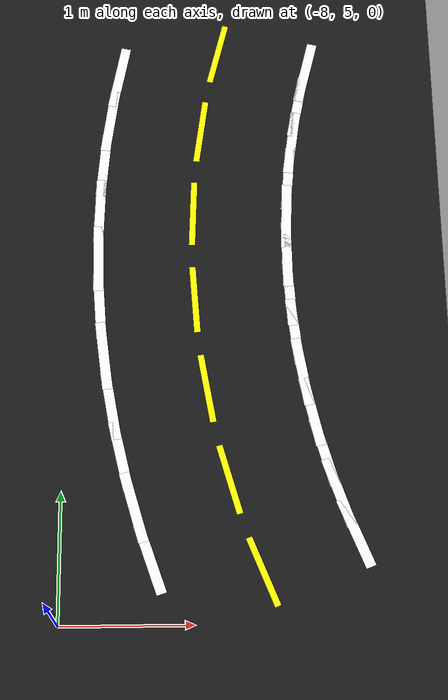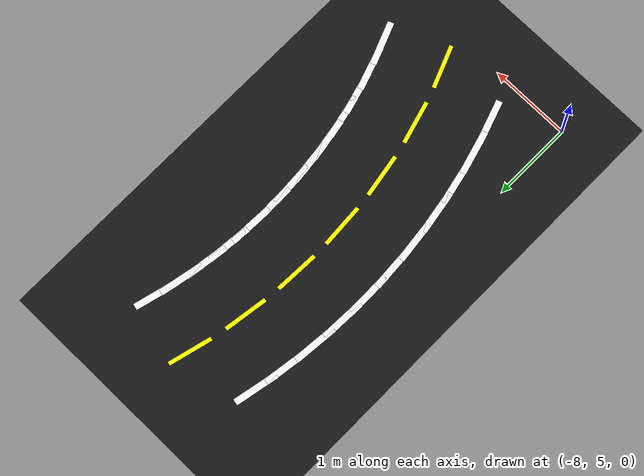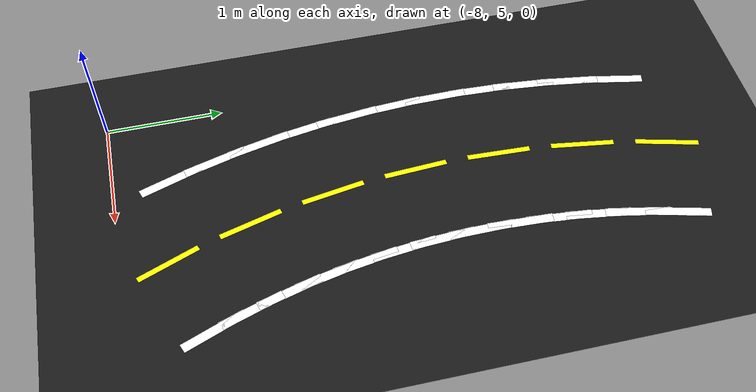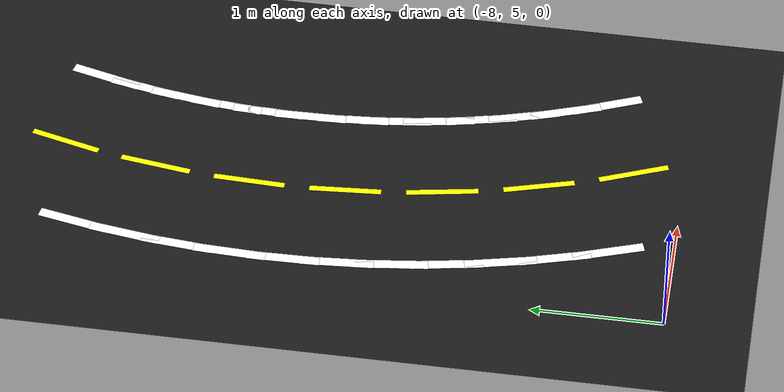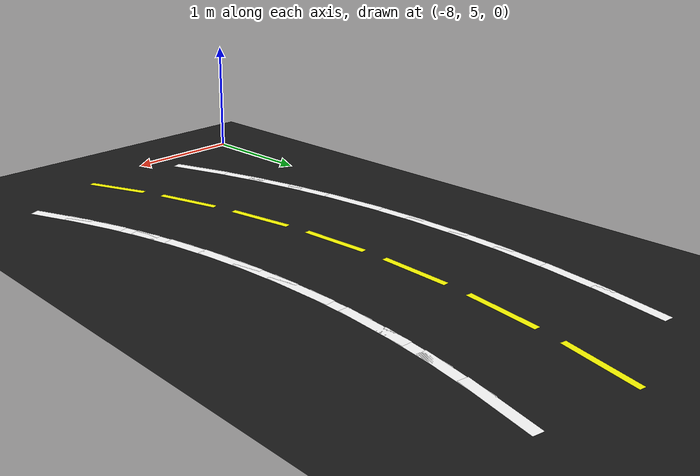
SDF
<sdf version="1.6">
 <world name="lane_world">
  <model name="ground">
   <static>true</static>
   <link name="link">
    <visual name="v">
     <geometry><plane><normal>0 0 1</normal><size>80 80</size></plane></geometry>
     <material><ambient>0.10 0.10 0.10 1</ambient><diffuse>0.10 0.10 0.10 1</diffuse></material>
    </visual>
    <collision name="c"><geometry><plane><normal>0 0 1</normal><size>80 80</size></plane></geometry></collision>
   </link>
  </model>
  <model name="seg_0211">
   <static>true</static>
   <pose>-6.0545 9.5511 0.002 0 0 1.3200</pose>
   <link name="link">
    <visual name="v">
     <geometry><box><size>0.550 0.080 0.0020</size></box></geometry>
     <material><ambient>1 1 1 1</ambient><diffuse>1 1 1 1</diffuse></material>
    </visual>
   </link>
  </model>
  <model name="seg_0212">
   <static>true</static>
   <pose>-6.7810 9.7372 0.002 0 0 1.3200</pose>
   <link name="link">
    <visual name="v">
     <geometry><box><size>0.550 0.05 0.0020</size></box></geometry>
     <material><ambient>1 1 0 1</ambient><diffuse>1 1 0 1</diffuse></material>
    </visual>
   </link>
  </model>
  <model name="seg_0213">
   <static>true</static>
   <pose>-7.5986 9.5245 0.002 0 0 1.3728</pose>
   <link name="link">
    <visual name="v">
     <geometry><box><size>0.550 0.080 0.0020</size></box></geometry>
     <material><ambient>1 1 1 1</ambient><diffuse>1 1 1 1</diffuse></material>
    </visual>
   </link>
  </model>
  <model name="seg_0214">
   <static>true</static>
   <pose>-6.1279 9.2294 0.002 0 0 1.3728</pose>
   <link name="link">
    <visual name="v">
     <geometry><box><size>0.550 0.080 0.0020</size></box></geometry>
     <material><ambient>1 1 1 1</ambient><diffuse>1 1 1 1</diffuse></material>
    </visual>
   </link>
  </model>
  <model name="seg_0215">
   <static>true</static>
   <pose>-7.6684 9.1213 0.002 0 0 1.4256</pose>
   <link name="link">
    <visual name="v">
     <geometry><box><size>0.550 0.080 0.0020</size></box></geometry>
     <material><ambient>1 1 1 1</ambient><diffuse>1 1 1 1</diffuse></material>
    </visual>
   </link>
  </model>
  <model name="seg_0216">
   <static>true</static>
   <pose>-6.1842 8.9043 0.002 0 0 1.4256</pose>
   <link name="link">
    <visual name="v">
     <geometry><box><size>0.550 0.080 0.0020</size></box></geometry>
     <material><ambient>1 1 1 1</ambient><diffuse>1 1 1 1</diffuse></material>
    </visual>
   </link>
  </model>
  <model name="seg_0217">
   <static>true</static>
   <pose>-6.9263 9.0128 0.002 0 0 1.4256</pose>
   <link name="link">
    <visual name="v">
     <geometry><box><size>0.550 0.05 0.0020</size></box></geometry>
     <material><ambient>1 1 0 1</ambient><diffuse>1 1 0 1</diffuse></material>
    </visual>
   </link>
  </model>
  <model name="seg_0218">
   <static>true</static>
   <pose>-7.7169 8.7151 0.002 0 0 1.4784</pose>
   <link name="link">
    <visual name="v">
     <geometry><box><size>0.550 0.080 0.0020</size></box></geometry>
     <material><ambient>1 1 1 1</ambient><diffuse>1 1 1 1</diffuse></material>
    </visual>
   </link>
  </model>
  <model name="seg_0219">
   <static>true</static>
   <pose>-6.2233 8.5767 0.002 0 0 1.4784</pose>
   <link name="link">
    <visual name="v">
     <geometry><box><size>0.550 0.080 0.0020</size></box></geometry>
     <material><ambient>1 1 1 1</ambient><diffuse>1 1 1 1</diffuse></material>
    </visual>
   </link>
  </model>
  <model name="seg_0220">
   <static>true</static>
   <pose>-7.7439 8.3068 0.002 0 0 1.5312</pose>
   <link name="link">
    <visual name="v">
     <geometry><box><size>0.550 0.080 0.0020</size></box></geometry>
     <material><ambient>1 1 1 1</ambient><diffuse>1 1 1 1</diffuse></material>
    </visual>
   </link>
  </model>
  <model name="seg_0221">
   <static>true</static>
   <pose>-6.2451 8.2474 0.002 0 0 1.5312</pose>
   <link name="link">
    <visual name="v">
     <geometry><box><size>0.550 0.080 0.0020</size></box></geometry>
     <material><ambient>1 1 1 1</ambient><diffuse>1 1 1 1</diffuse></material>
    </visual>
   </link>
  </model>
  <model name="seg_0222">
   <static>true</static>
   <pose>-6.9945 8.2771 0.002 0 0 1.5312</pose>
   <link name="link">
    <visual name="v">
     <geometry><box><size>0.550 0.05 0.0020</size></box></geometry>
     <material><ambient>1 1 0 1</ambient><diffuse>1 1 0 1</diffuse></material>
    </visual>
   </link>
  </model>
  <model name="seg_0223">
   <static>true</static>
   <pose>-7.7493 7.8977 0.002 0 0 1.5840</pose>
   <link name="link">
    <visual name="v">
     <geometry><box><size>0.550 0.080 0.0020</size></box></geometry>
     <material><ambient>1 1 1 1</ambient><diffuse>1 1 1 1</diffuse></material>
    </visual>
   </link>
  </model>
  <model name="seg_0224">
   <static>true</static>
   <pose>-6.2495 7.9175 0.002 0 0 1.5840</pose>
   <link name="link">
    <visual name="v">
     <geometry><box><size>0.550 0.080 0.0020</size></box></geometry>
     <material><ambient>1 1 1 1</ambient><diffuse>1 1 1 1</diffuse></material>
    </visual>
   </link>
  </model>
  <model name="seg_0225">
   <static>true</static>
   <pose>-7.7331 7.4889 0.002 0 0 1.6368</pose>
   <link name="link">
    <visual name="v">
     <geometry><box><size>0.550 0.080 0.0020</size></box></geometry>
     <material><ambient>1 1 1 1</ambient><diffuse>1 1 1 1</diffuse></material>
    </visual>
   </link>
  </model>
  <model name="seg_0226">
   <static>true</static>
   <pose>-6.2364 7.5878 0.002 0 0 1.6368</pose>
   <link name="link">
    <visual name="v">
     <geometry><box><size>0.550 0.080 0.0020</size></box></geometry>
     <material><ambient>1 1 1 1</ambient><diffuse>1 1 1 1</diffuse></material>
    </visual>
   </link>
  </model>
  <model name="seg_0227">
   <static>true</static>
   <pose>-6.9848 7.5383 0.002 0 0 1.6368</pose>
   <link name="link">
    <visual name="v">
     <geometry><box><size>0.550 0.05 0.0020</size></box></geometry>
     <material><ambient>1 1 0 1</ambient><diffuse>1 1 0 1</diffuse></material>
    </visual>
   </link>
  </model>
  <model name="seg_0228">
   <static>true</static>
   <pose>-7.6954 7.0815 0.002 0 0 1.6896</pose>
   <link name="link">
    <visual name="v">
     <geometry><box><size>0.550 0.080 0.0020</size></box></geometry>
     <material><ambient>1 1 1 1</ambient><diffuse>1 1 1 1</diffuse></material>
    </visual>
   </link>
  </model>
  <model name="seg_0229">
   <static>true</static>
   <pose>-6.2059 7.2592 0.002 0 0 1.6896</pose>
   <link name="link">
    <visual name="v">
     <geometry><box><size>0.550 0.080 0.0020</size></box></geometry>
     <material><ambient>1 1 1 1</ambient><diffuse>1 1 1 1</diffuse></material>
    </visual>
   </link>
  </model>
  <model name="seg_0230">
   <static>true</static>
   <pose>-7.6362 6.6766 0.002 0 0 1.7424</pose>
   <link name="link">
    <visual name="v">
     <geometry><box><size>0.550 0.080 0.0020</size></box></geometry>
     <material><ambient>1 1 1 1</ambient><diffuse>1 1 1 1</diffuse></material>
    </visual>
   </link>
  </model>
  <model name="seg_0231">
   <static>true</static>
   <pose>-6.1582 6.9328 0.002 0 0 1.7424</pose>
   <link name="link">
    <visual name="v">
     <geometry><box><size>0.550 0.080 0.0020</size></box></geometry>
     <material><ambient>1 1 1 1</ambient><diffuse>1 1 1 1</diffuse></material>
    </visual>
   </link>
  </model>
  <model name="seg_0232">
   <static>true</static>
   <pose>-6.8972 6.8047 0.002 0 0 1.7424</pose>
   <link name="link">
    <visual name="v">
     <geometry><box><size>0.550 0.05 0.0020</size></box></geometry>
     <material><ambient>1 1 0 1</ambient><diffuse>1 1 0 1</diffuse></material>
    </visual>
   </link>
  </model>
  <model name="seg_0233">
   <static>true</static>
   <pose>-7.5557 6.2755 0.002 0 0 1.7952</pose>
   <link name="link">
    <visual name="v">
     <geometry><box><size>0.550 0.080 0.0020</size></box></geometry>
     <material><ambient>1 1 1 1</ambient><diffuse>1 1 1 1</diffuse></material>
    </visual>
   </link>
  </model>
  <model name="seg_0234">
   <static>true</static>
   <pose>-6.0933 6.6092 0.002 0 0 1.7952</pose>
   <link name="link">
    <visual name="v">
     <geometry><box><size>0.550 0.080 0.0020</size></box></geometry>
     <material><ambient>1 1 1 1</ambient><diffuse>1 1 1 1</diffuse></material>
    </visual>
   </link>
  </model>
  <model name="seg_0235">
   <static>true</static>
   <pose>-7.4541 5.8791 0.002 0 0 1.8480</pose>
   <link name="link">
    <visual name="v">
     <geometry><box><size>0.550 0.080 0.0020</size></box></geometry>
     <material><ambient>1 1 1 1</ambient><diffuse>1 1 1 1</diffuse></material>
    </visual>
   </link>
  </model>
  <model name="seg_0236">
   <static>true</static>
   <pose>-6.0114 6.2896 0.002 0 0 1.8480</pose>
   <link name="link">
    <visual name="v">
     <geometry><box><size>0.550 0.080 0.0020</size></box></geometry>
     <material><ambient>1 1 1 1</ambient><diffuse>1 1 1 1</diffuse></material>
    </visual>
   </link>
  </model>
  <model name="seg_0237">
   <static>true</static>
   <pose>-6.7328 6.0844 0.002 0 0 1.8480</pose>
   <link name="link">
    <visual name="v">
     <geometry><box><size>0.550 0.05 0.0020</size></box></geometry>
     <material><ambient>1 1 0 1</ambient><diffuse>1 1 0 1</diffuse></material>
    </visual>
   </link>
  </model>
  <model name="seg_0238">
   <static>true</static>
   <pose>-7.3318 5.4887 0.002 0 0 1.9008</pose>
   <link name="link">
    <visual name="v">
     <geometry><box><size>0.550 0.080 0.0020</size></box></geometry>
     <material><ambient>1 1 1 1</ambient><diffuse>1 1 1 1</diffuse></material>
    </visual>
   </link>
  </model>
  <model name="seg_0239">
   <static>true</static>
   <pose>-5.9128 5.9747 0.002 0 0 1.9008</pose>
   <link name="link">
    <visual name="v">
     <geometry><box><size>0.550 0.080 0.0020</size></box></geometry>
     <material><ambient>1 1 1 1</ambient><diffuse>1 1 1 1</diffuse></material>
    </visual>
   </link>
  </model>
  <model name="seg_0241">
   <static>true</static>
   <pose>-5.7976 5.6655 0.002 0 0 1.9536</pose>
   <link name="link">
    <visual name="v">
     <geometry><box><size>0.550 0.080 0.0020</size></box></geometry>
     <material><ambient>1 1 1 1</ambient><diffuse>1 1 1 1</diffuse></material>
    </visual>
   </link>
  </model>
  <model name="seg_0242">
   <static>true</static>
   <pose>-6.4934 5.3854 0.002 0 0 1.9536</pose>
   <link name="link">
    <visual name="v">
     <geometry><box><size>0.550 0.05 0.0020</size></box></geometry>
     <material><ambient>1 1 0 1</ambient><diffuse>1 1 0 1</diffuse></material>
    </visual>
   </link>
  </model>
 </world>
</sdf>
